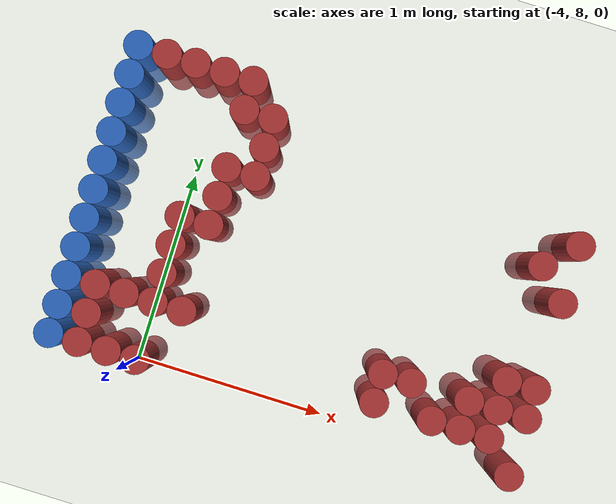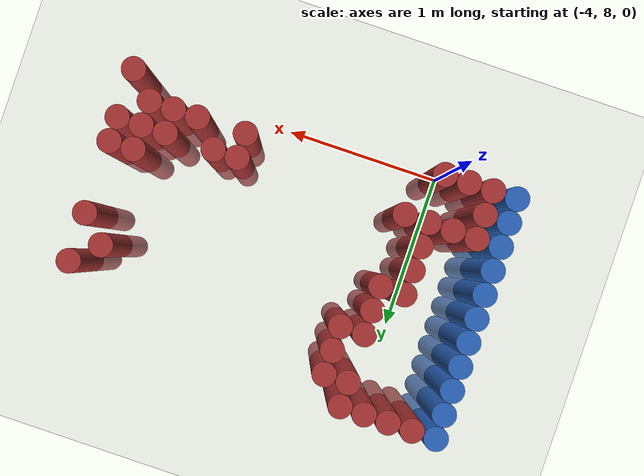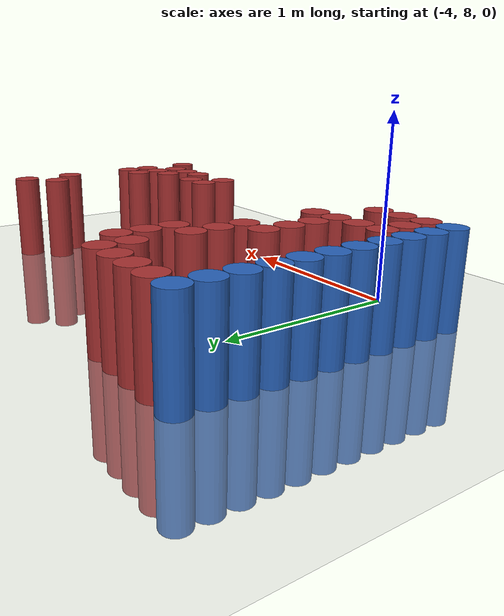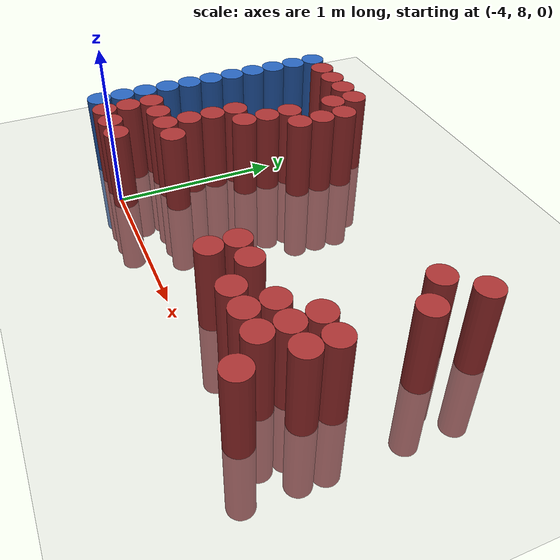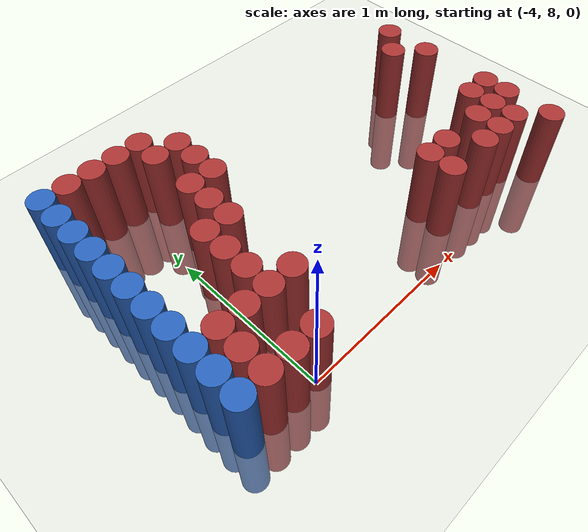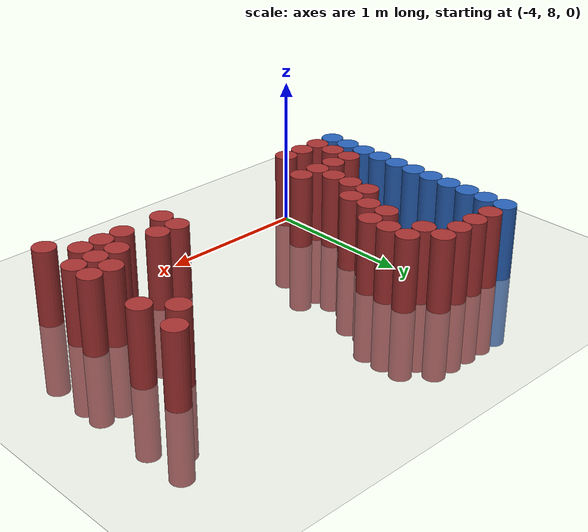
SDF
<sdf version="1.6">
 <world name="default">
  <model name="ground_plane">
   <static>1</static>
   <link name="link">
    <collision name="collision">
     <geometry><plane><normal>0 0 1</normal><size>100 100</size></plane></geometry>
     <surface><friction><ode><mu>100</mu><mu2>50</mu2></ode></friction></surface>
    </collision>
    <visual name="visual">
     <cast_shadows>0</cast_shadows>
     <geometry><plane><normal>0 0 1</normal><size>100 100</size></plane></geometry>
     <material>
      <script><uri>file://media/materials/scripts/gazebo.material</uri><name>Gazebo/Grey</name></script>
     </material>
    </visual>
   </link>
  </model>
  <model name="unit_cylinder_115">
   <static>1</static>
   <pose>-4.425000 8.025000 0.000000 0.000000 0.000000 0.000000</pose>
   <link name="link">
    <inertial>
     <mass>1</mass>
     <inertia><ixx>0.145833</ixx><ixy>0</ixy><ixz>0</ixz><iyy>0.145833</iyy><iyz>0</iyz><izz>0.125</izz></inertia>
    </inertial>
    <collision name="collision">
     <geometry><cylinder><radius>0.075000</radius><length>1</length></cylinder></geometry>
    </collision>
    <visual name="visual">
     <geometry><cylinder><radius>0.075000</radius><length>1</length></cylinder></geometry>
     <material>
      <ambient>0.152000 0.379000 0.720000 1</ambient>
      <diffuse>0.152000 0.379000 0.720000 1</diffuse>
     </material>
     <material>
      <script><name>Gazebo/Grey</name><uri>file://media/materials/scripts/gazebo.material</uri></script>
     </material>
    </visual>
   </link>
  </model>
  <model name="unit_cylinder_116">
   <static>1</static>
   <pose>-4.425000 8.175000 0.000000 0.000000 0.000000 0.000000</pose>
   <link name="link">
    <inertial>
     <mass>1</mass>
     <inertia><ixx>0.145833</ixx><ixy>0</ixy><ixz>0</ixz><iyy>0.145833</iyy><iyz>0</iyz><izz>0.125</izz></inertia>
    </inertial>
    <collision name="collision">
     <geometry><cylinder><radius>0.075000</radius><length>1</length></cylinder></geometry>
    </collision>
    <visual name="visual">
     <geometry><cylinder><radius>0.075000</radius><length>1</length></cylinder></geometry>
     <material>
      <ambient>0.152000 0.379000 0.720000 1</ambient>
      <diffuse>0.152000 0.379000 0.720000 1</diffuse>
     </material>
     <material>
      <script><name>Gazebo/Grey</name><uri>file://media/materials/scripts/gazebo.material</uri></script>
     </material>
    </visual>
   </link>
  </model>
  <model name="unit_cylinder_117">
   <static>1</static>
   <pose>-4.425000 8.325000 0.000000 0.000000 0.000000 0.000000</pose>
   <link name="link">
    <inertial>
     <mass>1</mass>
     <inertia><ixx>0.145833</ixx><ixy>0</ixy><ixz>0</ixz><iyy>0.145833</iyy><iyz>0</iyz><izz>0.125</izz></inertia>
    </inertial>
    <collision name="collision">
     <geometry><cylinder><radius>0.075000</radius><length>1</length></cylinder></geometry>
    </collision>
    <visual name="visual">
     <geometry><cylinder><radius>0.075000</radius><length>1</length></cylinder></geometry>
     <material>
      <ambient>0.152000 0.379000 0.720000 1</ambient>
      <diffuse>0.152000 0.379000 0.720000 1</diffuse>
     </material>
     <material>
      <script><name>Gazebo/Grey</name><uri>file://media/materials/scripts/gazebo.material</uri></script>
     </material>
    </visual>
   </link>
  </model>
  <model name="unit_cylinder_118">
   <static>1</static>
   <pose>-4.425000 8.475000 0.000000 0.000000 0.000000 0.000000</pose>
   <link name="link">
    <inertial>
     <mass>1</mass>
     <inertia><ixx>0.145833</ixx><ixy>0</ixy><ixz>0</ixz><iyy>0.145833</iyy><iyz>0</iyz><izz>0.125</izz></inertia>
    </inertial>
    <collision name="collision">
     <geometry><cylinder><radius>0.075000</radius><length>1</length></cylinder></geometry>
    </collision>
    <visual name="visual">
     <geometry><cylinder><radius>0.075000</radius><length>1</length></cylinder></geometry>
     <material>
      <ambient>0.152000 0.379000 0.720000 1</ambient>
      <diffuse>0.152000 0.379000 0.720000 1</diffuse>
     </material>
     <material>
      <script><name>Gazebo/Grey</name><uri>file://media/materials/scripts/gazebo.material</uri></script>
     </material>
    </visual>
   </link>
  </model>
  <model name="unit_cylinder_119">
   <static>1</static>
   <pose>-4.425000 8.625000 0.000000 0.000000 0.000000 0.000000</pose>
   <link name="link">
    <inertial>
     <mass>1</mass>
     <inertia><ixx>0.145833</ixx><ixy>0</ixy><ixz>0</ixz><iyy>0.145833</iyy><iyz>0</iyz><izz>0.125</izz></inertia>
    </inertial>
    <collision name="collision">
     <geometry><cylinder><radius>0.075000</radius><length>1</length></cylinder></geometry>
    </collision>
    <visual name="visual">
     <geometry><cylinder><radius>0.075000</radius><length>1</length></cylinder></geometry>
     <material>
      <ambient>0.152000 0.379000 0.720000 1</ambient>
      <diffuse>0.152000 0.379000 0.720000 1</diffuse>
     </material>
     <material>
      <script><name>Gazebo/Grey</name><uri>file://media/materials/scripts/gazebo.material</uri></script>
     </material>
    </visual>
   </link>
  </model>
  <model name="unit_cylinder_120">
   <static>1</static>
   <pose>-4.425000 8.775000 0.000000 0.000000 0.000000 0.000000</pose>
   <link name="link">
    <inertial>
     <mass>1</mass>
     <inertia><ixx>0.145833</ixx><ixy>0</ixy><ixz>0</ixz><iyy>0.145833</iyy><iyz>0</iyz><izz>0.125</izz></inertia>
    </inertial>
    <collision name="collision">
     <geometry><cylinder><radius>0.075000</radius><length>1</length></cylinder></geometry>
    </collision>
    <visual name="visual">
     <geometry><cylinder><radius>0.075000</radius><length>1</length></cylinder></geometry>
     <material>
      <ambient>0.152000 0.379000 0.720000 1</ambient>
      <diffuse>0.152000 0.379000 0.720000 1</diffuse>
     </material>
     <material>
      <script><name>Gazebo/Grey</name><uri>file://media/materials/scripts/gazebo.material</uri></script>
     </material>
    </visual>
   </link>
  </model>
  <model name="unit_cylinder_121">
   <static>1</static>
   <pose>-4.425000 8.925000 0.000000 0.000000 0.000000 0.000000</pose>
   <link name="link">
    <inertial>
     <mass>1</mass>
     <inertia><ixx>0.145833</ixx><ixy>0</ixy><ixz>0</ixz><iyy>0.145833</iyy><iyz>0</iyz><izz>0.125</izz></inertia>
    </inertial>
    <collision name="collision">
     <geometry><cylinder><radius>0.075000</radius><length>1</length></cylinder></geometry>
    </collision>
    <visual name="visual">
     <geometry><cylinder><radius>0.075000</radius><length>1</length></cylinder></geometry>
     <material>
      <ambient>0.152000 0.379000 0.720000 1</ambient>
      <diffuse>0.152000 0.379000 0.720000 1</diffuse>
     </material>
     <material>
      <script><name>Gazebo/Grey</name><uri>file://media/materials/scripts/gazebo.material</uri></script>
     </material>
    </visual>
   </link>
  </model>
  <model name="unit_cylinder_122">
   <static>1</static>
   <pose>-4.425000 9.075000 0.000000 0.000000 0.000000 0.000000</pose>
   <link name="link">
    <inertial>
     <mass>1</mass>
     <inertia><ixx>0.145833</ixx><ixy>0</ixy><ixz>0</ixz><iyy>0.145833</iyy><iyz>0</iyz><izz>0.125</izz></inertia>
    </inertial>
    <collision name="collision">
     <geometry><cylinder><radius>0.075000</radius><length>1</length></cylinder></geometry>
    </collision>
    <visual name="visual">
     <geometry><cylinder><radius>0.075000</radius><length>1</length></cylinder></geometry>
     <material>
      <ambient>0.152000 0.379000 0.720000 1</ambient>
      <diffuse>0.152000 0.379000 0.720000 1</diffuse>
     </material>
     <material>
      <script><name>Gazebo/Grey</name><uri>file://media/materials/scripts/gazebo.material</uri></script>
     </material>
    </visual>
   </link>
  </model>
  <model name="unit_cylinder_123">
   <static>1</static>
   <pose>-4.425000 9.225000 0.000000 0.000000 0.000000 0.000000</pose>
   <link name="link">
    <inertial>
     <mass>1</mass>
     <inertia><ixx>0.145833</ixx><ixy>0</ixy><ixz>0</ixz><iyy>0.145833</iyy><iyz>0</iyz><izz>0.125</izz></inertia>
    </inertial>
    <collision name="collision">
     <geometry><cylinder><radius>0.075000</radius><length>1</length></cylinder></geometry>
    </collision>
    <visual name="visual">
     <geometry><cylinder><radius>0.075000</radius><length>1</length></cylinder></geometry>
     <material>
      <ambient>0.152000 0.379000 0.720000 1</ambient>
      <diffuse>0.152000 0.379000 0.720000 1</diffuse>
     </material>
     <material>
      <script><name>Gazebo/Grey</name><uri>file://media/materials/scripts/gazebo.material</uri></script>
     </material>
    </visual>
   </link>
  </model>
  <model name="unit_cylinder_124">
   <static>1</static>
   <pose>-4.425000 9.375000 0.000000 0.000000 0.000000 0.000000</pose>
   <link name="link">
    <inertial>
     <mass>1</mass>
     <inertia><ixx>0.145833</ixx><ixy>0</ixy><ixz>0</ixz><iyy>0.145833</iyy><iyz>0</iyz><izz>0.125</izz></inertia>
    </inertial>
    <collision name="collision">
     <geometry><cylinder><radius>0.075000</radius><length>1</length></cylinder></geometry>
    </collision>
    <visual name="visual">
     <geometry><cylinder><radius>0.075000</radius><length>1</length></cylinder></geometry>
     <material>
      <ambient>0.152000 0.379000 0.720000 1</ambient>
      <diffuse>0.152000 0.379000 0.720000 1</diffuse>
     </material>
     <material>
      <script><name>Gazebo/Grey</name><uri>file://media/materials/scripts/gazebo.material</uri></script>
     </material>
    </visual>
   </link>
  </model>
  <model name="unit_cylinder_125">
   <static>1</static>
   <pose>-4.425000 9.525000 0.000000 0.000000 0.000000 0.000000</pose>
   <link name="link">
    <inertial>
     <mass>1</mass>
     <inertia><ixx>0.145833</ixx><ixy>0</ixy><ixz>0</ixz><iyy>0.145833</iyy><iyz>0</iyz><izz>0.125</izz></inertia>
    </inertial>
    <collision name="collision">
     <geometry><cylinder><radius>0.075000</radius><length>1</length></cylinder></geometry>
    </collision>
    <visual name="visual">
     <geometry><cylinder><radius>0.075000</radius><length>1</length></cylinder></geometry>
     <material>
      <ambient>0.152000 0.379000 0.720000 1</ambient>
      <diffuse>0.152000 0.379000 0.720000 1</diffuse>
     </material>
     <material>
      <script><name>Gazebo/Grey</name><uri>file://media/materials/scripts/gazebo.material</uri></script>
     </material>
    </visual>
   </link>
  </model>
  <model name="unit_cylinder_131">
   <static>1</static>
   <pose>-4.275000 8.025000 0.000000 0.000000 0.000000 0.000000</pose>
   <link name="link">
    <inertial>
     <mass>1</mass>
     <inertia><ixx>0.145833</ixx><ixy>0</ixy><ixz>0</ixz><iyy>0.145833</iyy><iyz>0</iyz><izz>0.125</izz></inertia>
    </inertial>
    <collision name="collision">
     <geometry><cylinder><radius>0.075000</radius><length>1</length></cylinder></geometry>
    </collision>
    <visual name="visual">
     <geometry><cylinder><radius>0.075000</radius><length>1</length></cylinder></geometry>
     <material>
      <ambient>0.648000 0.192000 0.192000 1</ambient>
      <diffuse>0.648000 0.192000 0.192000 1</diffuse>
     </material>
     <material>
      <script><name>Gazebo/Grey</name><uri>file://media/materials/scripts/gazebo.material</uri></script>
     </material>
    </visual>
   </link>
  </model>
  <model name="unit_cylinder_132">
   <static>1</static>
   <pose>-4.275000 8.175000 0.000000 0.000000 0.000000 0.000000</pose>
   <link name="link">
    <inertial>
     <mass>1</mass>
     <inertia><ixx>0.145833</ixx><ixy>0</ixy><ixz>0</ixz><iyy>0.145833</iyy><iyz>0</iyz><izz>0.125</izz></inertia>
    </inertial>
    <collision name="collision">
     <geometry><cylinder><radius>0.075000</radius><length>1</length></cylinder></geometry>
    </collision>
    <visual name="visual">
     <geometry><cylinder><radius>0.075000</radius><length>1</length></cylinder></geometry>
     <material>
      <ambient>0.648000 0.192000 0.192000 1</ambient>
      <diffuse>0.648000 0.192000 0.192000 1</diffuse>
     </material>
     <material>
      <script><name>Gazebo/Grey</name><uri>file://media/materials/scripts/gazebo.material</uri></script>
     </material>
    </visual>
   </link>
  </model>
  <model name="unit_cylinder_133">
   <static>1</static>
   <pose>-4.275000 8.325000 0.000000 0.000000 0.000000 0.000000</pose>
   <link name="link">
    <inertial>
     <mass>1</mass>
     <inertia><ixx>0.145833</ixx><ixy>0</ixy><ixz>0</ixz><iyy>0.145833</iyy><iyz>0</iyz><izz>0.125</izz></inertia>
    </inertial>
    <collision name="collision">
     <geometry><cylinder><radius>0.075000</radius><length>1</length></cylinder></geometry>
    </collision>
    <visual name="visual">
     <geometry><cylinder><radius>0.075000</radius><length>1</length></cylinder></geometry>
     <material>
      <ambient>0.648000 0.192000 0.192000 1</ambient>
      <diffuse>0.648000 0.192000 0.192000 1</diffuse>
     </material>
     <material>
      <script><name>Gazebo/Grey</name><uri>file://media/materials/scripts/gazebo.material</uri></script>
     </material>
    </visual>
   </link>
  </model>
  <model name="unit_cylinder_134">
   <static>1</static>
   <pose>-4.275000 9.525000 0.000000 0.000000 0.000000 0.000000</pose>
   <link name="link">
    <inertial>
     <mass>1</mass>
     <inertia><ixx>0.145833</ixx><ixy>0</ixy><ixz>0</ixz><iyy>0.145833</iyy><iyz>0</iyz><izz>0.125</izz></inertia>
    </inertial>
    <collision name="collision">
     <geometry><cylinder><radius>0.075000</radius><length>1</length></cylinder></geometry>
    </collision>
    <visual name="visual">
     <geometry><cylinder><radius>0.075000</radius><length>1</length></cylinder></geometry>
     <material>
      <ambient>0.648000 0.192000 0.192000 1</ambient>
      <diffuse>0.648000 0.192000 0.192000 1</diffuse>
     </material>
     <material>
      <script><name>Gazebo/Grey</name><uri>file://media/materials/scripts/gazebo.material</uri></script>
     </material>
    </visual>
   </link>
  </model>
  <model name="unit_cylinder_140">
   <static>1</static>
   <pose>-4.125000 8.025000 0.000000 0.000000 0.000000 0.000000</pose>
   <link name="link">
    <inertial>
     <mass>1</mass>
     <inertia><ixx>0.145833</ixx><ixy>0</ixy><ixz>0</ixz><iyy>0.145833</iyy><iyz>0</iyz><izz>0.125</izz></inertia>
    </inertial>
    <collision name="collision">
     <geometry><cylinder><radius>0.075000</radius><length>1</length></cylinder></geometry>
    </collision>
    <visual name="visual">
     <geometry><cylinder><radius>0.075000</radius><length>1</length></cylinder></geometry>
     <material>
      <ambient>0.648000 0.192000 0.192000 1</ambient>
      <diffuse>0.648000 0.192000 0.192000 1</diffuse>
     </material>
     <material>
      <script><name>Gazebo/Grey</name><uri>file://media/materials/scripts/gazebo.material</uri></script>
     </material>
    </visual>
   </link>
  </model>
  <model name="unit_cylinder_141">
   <static>1</static>
   <pose>-4.125000 8.325000 0.000000 0.000000 0.000000 0.000000</pose>
   <link name="link">
    <inertial>
     <mass>1</mass>
     <inertia><ixx>0.145833</ixx><ixy>0</ixy><ixz>0</ixz><iyy>0.145833</iyy><iyz>0</iyz><izz>0.125</izz></inertia>
    </inertial>
    <collision name="collision">
     <geometry><cylinder><radius>0.075000</radius><length>1</length></cylinder></geometry>
    </collision>
    <visual name="visual">
     <geometry><cylinder><radius>0.075000</radius><length>1</length></cylinder></geometry>
     <material>
      <ambient>0.648000 0.192000 0.192000 1</ambient>
      <diffuse>0.648000 0.192000 0.192000 1</diffuse>
     </material>
     <material>
      <script><name>Gazebo/Grey</name><uri>file://media/materials/scripts/gazebo.material</uri></script>
     </material>
    </visual>
   </link>
  </model>
  <model name="unit_cylinder_142">
   <static>1</static>
   <pose>-4.125000 9.525000 0.000000 0.000000 0.000000 0.000000</pose>
   <link name="link">
    <inertial>
     <mass>1</mass>
     <inertia><ixx>0.145833</ixx><ixy>0</ixy><ixz>0</ixz><iyy>0.145833</iyy><iyz>0</iyz><izz>0.125</izz></inertia>
    </inertial>
    <collision name="collision">
     <geometry><cylinder><radius>0.075000</radius><length>1</length></cylinder></geometry>
    </collision>
    <visual name="visual">
     <geometry><cylinder><radius>0.075000</radius><length>1</length></cylinder></geometry>
     <material>
      <ambient>0.648000 0.192000 0.192000 1</ambient>
      <diffuse>0.648000 0.192000 0.192000 1</diffuse>
     </material>
     <material>
      <script><name>Gazebo/Grey</name><uri>file://media/materials/scripts/gazebo.material</uri></script>
     </material>
    </visual>
   </link>
  </model>
  <model name="unit_cylinder_153">
   <static>1</static>
   <pose>-3.975000 8.025000 0.000000 0.000000 0.000000 0.000000</pose>
   <link name="link">
    <inertial>
     <mass>1</mass>
     <inertia><ixx>0.145833</ixx><ixy>0</ixy><ixz>0</ixz><iyy>0.145833</iyy><iyz>0</iyz><izz>0.125</izz></inertia>
    </inertial>
    <collision name="collision">
     <geometry><cylinder><radius>0.075000</radius><length>1</length></cylinder></geometry>
    </collision>
    <visual name="visual">
     <geometry><cylinder><radius>0.075000</radius><length>1</length></cylinder></geometry>
     <material>
      <ambient>0.648000 0.192000 0.192000 1</ambient>
      <diffuse>0.648000 0.192000 0.192000 1</diffuse>
     </material>
     <material>
      <script><name>Gazebo/Grey</name><uri>file://media/materials/scripts/gazebo.material</uri></script>
     </material>
    </visual>
   </link>
  </model>
  <model name="unit_cylinder_154">
   <static>1</static>
   <pose>-3.975000 8.325000 0.000000 0.000000 0.000000 0.000000</pose>
   <link name="link">
    <inertial>
     <mass>1</mass>
     <inertia><ixx>0.145833</ixx><ixy>0</ixy><ixz>0</ixz><iyy>0.145833</iyy><iyz>0</iyz><izz>0.125</izz></inertia>
    </inertial>
    <collision name="collision">
     <geometry><cylinder><radius>0.075000</radius><length>1</length></cylinder></geometry>
    </collision>
    <visual name="visual">
     <geometry><cylinder><radius>0.075000</radius><length>1</length></cylinder></geometry>
     <material>
      <ambient>0.648000 0.192000 0.192000 1</ambient>
      <diffuse>0.648000 0.192000 0.192000 1</diffuse>
     </material>
     <material>
      <script><name>Gazebo/Grey</name><uri>file://media/materials/scripts/gazebo.material</uri></script>
     </material>
    </visual>
   </link>
  </model>
  <model name="unit_cylinder_155">
   <static>1</static>
   <pose>-3.975000 8.475000 0.000000 0.000000 0.000000 0.000000</pose>
   <link name="link">
    <inertial>
     <mass>1</mass>
     <inertia><ixx>0.145833</ixx><ixy>0</ixy><ixz>0</ixz><iyy>0.145833</iyy><iyz>0</iyz><izz>0.125</izz></inertia>
    </inertial>
    <collision name="collision">
     <geometry><cylinder><radius>0.075000</radius><length>1</length></cylinder></geometry>
    </collision>
    <visual name="visual">
     <geometry><cylinder><radius>0.075000</radius><length>1</length></cylinder></geometry>
     <material>
      <ambient>0.648000 0.192000 0.192000 1</ambient>
      <diffuse>0.648000 0.192000 0.192000 1</diffuse>
     </material>
     <material>
      <script><name>Gazebo/Grey</name><uri>file://media/materials/scripts/gazebo.material</uri></script>
     </material>
    </visual>
   </link>
  </model>
  <model name="unit_cylinder_156">
   <static>1</static>
   <pose>-3.975000 8.625000 0.000000 0.000000 0.000000 0.000000</pose>
   <link name="link">
    <inertial>
     <mass>1</mass>
     <inertia><ixx>0.145833</ixx><ixy>0</ixy><ixz>0</ixz><iyy>0.145833</iyy><iyz>0</iyz><izz>0.125</izz></inertia>
    </inertial>
    <collision name="collision">
     <geometry><cylinder><radius>0.075000</radius><length>1</length></cylinder></geometry>
    </collision>
    <visual name="visual">
     <geometry><cylinder><radius>0.075000</radius><length>1</length></cylinder></geometry>
     <material>
      <ambient>0.648000 0.192000 0.192000 1</ambient>
      <diffuse>0.648000 0.192000 0.192000 1</diffuse>
     </material>
     <material>
      <script><name>Gazebo/Grey</name><uri>file://media/materials/scripts/gazebo.material</uri></script>
     </material>
    </visual>
   </link>
  </model>
  <model name="unit_cylinder_157">
   <static>1</static>
   <pose>-3.975000 8.775000 0.000000 0.000000 0.000000 0.000000</pose>
   <link name="link">
    <inertial>
     <mass>1</mass>
     <inertia><ixx>0.145833</ixx><ixy>0</ixy><ixz>0</ixz><iyy>0.145833</iyy><iyz>0</iyz><izz>0.125</izz></inertia>
    </inertial>
    <collision name="collision">
     <geometry><cylinder><radius>0.075000</radius><length>1</length></cylinder></geometry>
    </collision>
    <visual name="visual">
     <geometry><cylinder><radius>0.075000</radius><length>1</length></cylinder></geometry>
     <material>
      <ambient>0.648000 0.192000 0.192000 1</ambient>
      <diffuse>0.648000 0.192000 0.192000 1</diffuse>
     </material>
     <material>
      <script><name>Gazebo/Grey</name><uri>file://media/materials/scripts/gazebo.material</uri></script>
     </material>
    </visual>
   </link>
  </model>
  <model name="unit_cylinder_158">
   <static>1</static>
   <pose>-3.975000 9.525000 0.000000 0.000000 0.000000 0.000000</pose>
   <link name="link">
    <inertial>
     <mass>1</mass>
     <inertia><ixx>0.145833</ixx><ixy>0</ixy><ixz>0</ixz><iyy>0.145833</iyy><iyz>0</iyz><izz>0.125</izz></inertia>
    </inertial>
    <collision name="collision">
     <geometry><cylinder><radius>0.075000</radius><length>1</length></cylinder></geometry>
    </collision>
    <visual name="visual">
     <geometry><cylinder><radius>0.075000</radius><length>1</length></cylinder></geometry>
     <material>
      <ambient>0.648000 0.192000 0.192000 1</ambient>
      <diffuse>0.648000 0.192000 0.192000 1</diffuse>
     </material>
     <material>
      <script><name>Gazebo/Grey</name><uri>file://media/materials/scripts/gazebo.material</uri></script>
     </material>
    </visual>
   </link>
  </model>
  <model name="unit_cylinder_165">
   <static>1</static>
   <pose>-3.825000 8.325000 0.000000 0.000000 0.000000 0.000000</pose>
   <link name="link">
    <inertial>
     <mass>1</mass>
     <inertia><ixx>0.145833</ixx><ixy>0</ixy><ixz>0</ixz><iyy>0.145833</iyy><iyz>0</iyz><izz>0.125</izz></inertia>
    </inertial>
    <collision name="collision">
     <geometry><cylinder><radius>0.075000</radius><length>1</length></cylinder></geometry>
    </collision>
    <visual name="visual">
     <geometry><cylinder><radius>0.075000</radius><length>1</length></cylinder></geometry>
     <material>
      <ambient>0.648000 0.192000 0.192000 1</ambient>
      <diffuse>0.648000 0.192000 0.192000 1</diffuse>
     </material>
     <material>
      <script><name>Gazebo/Grey</name><uri>file://media/materials/scripts/gazebo.material</uri></script>
     </material>
    </visual>
   </link>
  </model>
  <model name="unit_cylinder_166">
   <static>1</static>
   <pose>-3.825000 8.775000 0.000000 0.000000 0.000000 0.000000</pose>
   <link name="link">
    <inertial>
     <mass>1</mass>
     <inertia><ixx>0.145833</ixx><ixy>0</ixy><ixz>0</ixz><iyy>0.145833</iyy><iyz>0</iyz><izz>0.125</izz></inertia>
    </inertial>
    <collision name="collision">
     <geometry><cylinder><radius>0.075000</radius><length>1</length></cylinder></geometry>
    </collision>
    <visual name="visual">
     <geometry><cylinder><radius>0.075000</radius><length>1</length></cylinder></geometry>
     <material>
      <ambient>0.648000 0.192000 0.192000 1</ambient>
      <diffuse>0.648000 0.192000 0.192000 1</diffuse>
     </material>
     <material>
      <script><name>Gazebo/Grey</name><uri>file://media/materials/scripts/gazebo.material</uri></script>
     </material>
    </visual>
   </link>
  </model>
  <model name="unit_cylinder_167">
   <static>1</static>
   <pose>-3.825000 8.925000 0.000000 0.000000 0.000000 0.000000</pose>
   <link name="link">
    <inertial>
     <mass>1</mass>
     <inertia><ixx>0.145833</ixx><ixy>0</ixy><ixz>0</ixz><iyy>0.145833</iyy><iyz>0</iyz><izz>0.125</izz></inertia>
    </inertial>
    <collision name="collision">
     <geometry><cylinder><radius>0.075000</radius><length>1</length></cylinder></geometry>
    </collision>
    <visual name="visual">
     <geometry><cylinder><radius>0.075000</radius><length>1</length></cylinder></geometry>
     <material>
      <ambient>0.648000 0.192000 0.192000 1</ambient>
      <diffuse>0.648000 0.192000 0.192000 1</diffuse>
     </material>
     <material>
      <script><name>Gazebo/Grey</name><uri>file://media/materials/scripts/gazebo.material</uri></script>
     </material>
    </visual>
   </link>
  </model>
  <model name="unit_cylinder_168">
   <static>1</static>
   <pose>-3.825000 9.075000 0.000000 0.000000 0.000000 0.000000</pose>
   <link name="link">
    <inertial>
     <mass>1</mass>
     <inertia><ixx>0.145833</ixx><ixy>0</ixy><ixz>0</ixz><iyy>0.145833</iyy><iyz>0</iyz><izz>0.125</izz></inertia>
    </inertial>
    <collision name="collision">
     <geometry><cylinder><radius>0.075000</radius><length>1</length></cylinder></geometry>
    </collision>
    <visual name="visual">
     <geometry><cylinder><radius>0.075000</radius><length>1</length></cylinder></geometry>
     <material>
      <ambient>0.648000 0.192000 0.192000 1</ambient>
      <diffuse>0.648000 0.192000 0.192000 1</diffuse>
     </material>
     <material>
      <script><name>Gazebo/Grey</name><uri>file://media/materials/scripts/gazebo.material</uri></script>
     </material>
    </visual>
   </link>
  </model>
  <model name="unit_cylinder_169">
   <static>1</static>
   <pose>-3.825000 9.375000 0.000000 0.000000 0.000000 0.000000</pose>
   <link name="link">
    <inertial>
     <mass>1</mass>
     <inertia><ixx>0.145833</ixx><ixy>0</ixy><ixz>0</ixz><iyy>0.145833</iyy><iyz>0</iyz><izz>0.125</izz></inertia>
    </inertial>
    <collision name="collision">
     <geometry><cylinder><radius>0.075000</radius><length>1</length></cylinder></geometry>
    </collision>
    <visual name="visual">
     <geometry><cylinder><radius>0.075000</radius><length>1</length></cylinder></geometry>
     <material>
      <ambient>0.648000 0.192000 0.192000 1</ambient>
      <diffuse>0.648000 0.192000 0.192000 1</diffuse>
     </material>
     <material>
      <script><name>Gazebo/Grey</name><uri>file://media/materials/scripts/gazebo.material</uri></script>
     </material>
    </visual>
   </link>
  </model>
  <model name="unit_cylinder_170">
   <static>1</static>
   <pose>-3.825000 9.525000 0.000000 0.000000 0.000000 0.000000</pose>
   <link name="link">
    <inertial>
     <mass>1</mass>
     <inertia><ixx>0.145833</ixx><ixy>0</ixy><ixz>0</ixz><iyy>0.145833</iyy><iyz>0</iyz><izz>0.125</izz></inertia>
    </inertial>
    <collision name="collision">
     <geometry><cylinder><radius>0.075000</radius><length>1</length></cylinder></geometry>
    </collision>
    <visual name="visual">
     <geometry><cylinder><radius>0.075000</radius><length>1</length></cylinder></geometry>
     <material>
      <ambient>0.648000 0.192000 0.192000 1</ambient>
      <diffuse>0.648000 0.192000 0.192000 1</diffuse>
     </material>
     <material>
      <script><name>Gazebo/Grey</name><uri>file://media/materials/scripts/gazebo.material</uri></script>
     </material>
    </visual>
   </link>
  </model>
  <model name="unit_cylinder_175">
   <static>1</static>
   <pose>-3.675000 9.075000 0.000000 0.000000 0.000000 0.000000</pose>
   <link name="link">
    <inertial>
     <mass>1</mass>
     <inertia><ixx>0.145833</ixx><ixy>0</ixy><ixz>0</ixz><iyy>0.145833</iyy><iyz>0</iyz><izz>0.125</izz></inertia>
    </inertial>
    <collision name="collision">
     <geometry><cylinder><radius>0.075000</radius><length>1</length></cylinder></geometry>
    </collision>
    <visual name="visual">
     <geometry><cylinder><radius>0.075000</radius><length>1</length></cylinder></geometry>
     <material>
      <ambient>0.648000 0.192000 0.192000 1</ambient>
      <diffuse>0.648000 0.192000 0.192000 1</diffuse>
     </material>
     <material>
      <script><name>Gazebo/Grey</name><uri>file://media/materials/scripts/gazebo.material</uri></script>
     </material>
    </visual>
   </link>
  </model>
  <model name="unit_cylinder_176">
   <static>1</static>
   <pose>-3.675000 9.225000 0.000000 0.000000 0.000000 0.000000</pose>
   <link name="link">
    <inertial>
     <mass>1</mass>
     <inertia><ixx>0.145833</ixx><ixy>0</ixy><ixz>0</ixz><iyy>0.145833</iyy><iyz>0</iyz><izz>0.125</izz></inertia>
    </inertial>
    <collision name="collision">
     <geometry><cylinder><radius>0.075000</radius><length>1</length></cylinder></geometry>
    </collision>
    <visual name="visual">
     <geometry><cylinder><radius>0.075000</radius><length>1</length></cylinder></geometry>
     <material>
      <ambient>0.648000 0.192000 0.192000 1</ambient>
      <diffuse>0.648000 0.192000 0.192000 1</diffuse>
     </material>
     <material>
      <script><name>Gazebo/Grey</name><uri>file://media/materials/scripts/gazebo.material</uri></script>
     </material>
    </visual>
   </link>
  </model>
  <model name="unit_cylinder_177">
   <static>1</static>
   <pose>-3.675000 9.375000 0.000000 0.000000 0.000000 0.000000</pose>
   <link name="link">
    <inertial>
     <mass>1</mass>
     <inertia><ixx>0.145833</ixx><ixy>0</ixy><ixz>0</ixz><iyy>0.145833</iyy><iyz>0</iyz><izz>0.125</izz></inertia>
    </inertial>
    <collision name="collision">
     <geometry><cylinder><radius>0.075000</radius><length>1</length></cylinder></geometry>
    </collision>
    <visual name="visual">
     <geometry><cylinder><radius>0.075000</radius><length>1</length></cylinder></geometry>
     <material>
      <ambient>0.648000 0.192000 0.192000 1</ambient>
      <diffuse>0.648000 0.192000 0.192000 1</diffuse>
     </material>
     <material>
      <script><name>Gazebo/Grey</name><uri>file://media/materials/scripts/gazebo.material</uri></script>
     </material>
    </visual>
   </link>
  </model>
  <model name="unit_cylinder_186">
   <static>1</static>
   <pose>-2.775000 8.175000 0.000000 0.000000 0.000000 0.000000</pose>
   <link name="link">
    <inertial>
     <mass>1</mass>
     <inertia><ixx>0.145833</ixx><ixy>0</ixy><ixz>0</ixz><iyy>0.145833</iyy><iyz>0</iyz><izz>0.125</izz></inertia>
    </inertial>
    <collision name="collision">
     <geometry><cylinder><radius>0.075000</radius><length>1</length></cylinder></geometry>
    </collision>
    <visual name="visual">
     <geometry><cylinder><radius>0.075000</radius><length>1</length></cylinder></geometry>
     <material>
      <ambient>0.648000 0.192000 0.192000 1</ambient>
      <diffuse>0.648000 0.192000 0.192000 1</diffuse>
     </material>
     <material>
      <script><name>Gazebo/Grey</name><uri>file://media/materials/scripts/gazebo.material</uri></script>
     </material>
    </visual>
   </link>
  </model>
  <model name="unit_cylinder_187">
   <static>1</static>
   <pose>-2.775000 8.325000 0.000000 0.000000 0.000000 0.000000</pose>
   <link name="link">
    <inertial>
     <mass>1</mass>
     <inertia><ixx>0.145833</ixx><ixy>0</ixy><ixz>0</ixz><iyy>0.145833</iyy><iyz>0</iyz><izz>0.125</izz></inertia>
    </inertial>
    <collision name="collision">
     <geometry><cylinder><radius>0.075000</radius><length>1</length></cylinder></geometry>
    </collision>
    <visual name="visual">
     <geometry><cylinder><radius>0.075000</radius><length>1</length></cylinder></geometry>
     <material>
      <ambient>0.648000 0.192000 0.192000 1</ambient>
      <diffuse>0.648000 0.192000 0.192000 1</diffuse>
     </material>
     <material>
      <script><name>Gazebo/Grey</name><uri>file://media/materials/scripts/gazebo.material</uri></script>
     </material>
    </visual>
   </link>
  </model>
  <model name="unit_cylinder_188">
   <static>1</static>
   <pose>-2.625000 8.325000 0.000000 0.000000 0.000000 0.000000</pose>
   <link name="link">
    <inertial>
     <mass>1</mass>
     <inertia><ixx>0.145833</ixx><ixy>0</ixy><ixz>0</ixz><iyy>0.145833</iyy><iyz>0</iyz><izz>0.125</izz></inertia>
    </inertial>
    <collision name="collision">
     <geometry><cylinder><radius>0.075000</radius><length>1</length></cylinder></geometry>
    </collision>
    <visual name="visual">
     <geometry><cylinder><radius>0.075000</radius><length>1</length></cylinder></geometry>
     <material>
      <ambient>0.648000 0.192000 0.192000 1</ambient>
      <diffuse>0.648000 0.192000 0.192000 1</diffuse>
     </material>
     <material>
      <script><name>Gazebo/Grey</name><uri>file://media/materials/scripts/gazebo.material</uri></script>
     </material>
    </visual>
   </link>
  </model>
  <model name="unit_cylinder_189">
   <static>1</static>
   <pose>-2.475000 8.175000 0.000000 0.000000 0.000000 0.000000</pose>
   <link name="link">
    <inertial>
     <mass>1</mass>
     <inertia><ixx>0.145833</ixx><ixy>0</ixy><ixz>0</ixz><iyy>0.145833</iyy><iyz>0</iyz><izz>0.125</izz></inertia>
    </inertial>
    <collision name="collision">
     <geometry><cylinder><radius>0.075000</radius><length>1</length></cylinder></geometry>
    </collision>
    <visual name="visual">
     <geometry><cylinder><radius>0.075000</radius><length>1</length></cylinder></geometry>
     <material>
      <ambient>0.648000 0.192000 0.192000 1</ambient>
      <diffuse>0.648000 0.192000 0.192000 1</diffuse>
     </material>
     <material>
      <script><name>Gazebo/Grey</name><uri>file://media/materials/scripts/gazebo.material</uri></script>
     </material>
    </visual>
   </link>
  </model>
  <model name="unit_cylinder_193">
   <static>1</static>
   <pose>-2.325000 8.175000 0.000000 0.000000 0.000000 0.000000</pose>
   <link name="link">
    <inertial>
     <mass>1</mass>
     <inertia><ixx>0.145833</ixx><ixy>0</ixy><ixz>0</ixz><iyy>0.145833</iyy><iyz>0</iyz><izz>0.125</izz></inertia>
    </inertial>
    <collision name="collision">
     <geometry><cylinder><radius>0.075000</radius><length>1</length></cylinder></geometry>
    </collision>
    <visual name="visual">
     <geometry><cylinder><radius>0.075000</radius><length>1</length></cylinder></geometry>
     <material>
      <ambient>0.648000 0.192000 0.192000 1</ambient>
      <diffuse>0.648000 0.192000 0.192000 1</diffuse>
     </material>
     <material>
      <script><name>Gazebo/Grey</name><uri>file://media/materials/scripts/gazebo.material</uri></script>
     </material>
    </visual>
   </link>
  </model>
  <model name="unit_cylinder_194">
   <static>1</static>
   <pose>-2.325000 8.325000 0.000000 0.000000 0.000000 0.000000</pose>
   <link name="link">
    <inertial>
     <mass>1</mass>
     <inertia><ixx>0.145833</ixx><ixy>0</ixy><ixz>0</ixz><iyy>0.145833</iyy><iyz>0</iyz><izz>0.125</izz></inertia>
    </inertial>
    <collision name="collision">
     <geometry><cylinder><radius>0.075000</radius><length>1</length></cylinder></geometry>
    </collision>
    <visual name="visual">
     <geometry><cylinder><radius>0.075000</radius><length>1</length></cylinder></geometry>
     <material>
      <ambient>0.648000 0.192000 0.192000 1</ambient>
      <diffuse>0.648000 0.192000 0.192000 1</diffuse>
     </material>
     <material>
      <script><name>Gazebo/Grey</name><uri>file://media/materials/scripts/gazebo.material</uri></script>
     </material>
    </visual>
   </link>
  </model>
  <model name="unit_cylinder_200">
   <static>1</static>
   <pose>-2.175000 8.175000 0.000000 0.000000 0.000000 0.000000</pose>
   <link name="link">
    <inertial>
     <mass>1</mass>
     <inertia><ixx>0.145833</ixx><ixy>0</ixy><ixz>0</ixz><iyy>0.145833</iyy><iyz>0</iyz><izz>0.125</izz></inertia>
    </inertial>
    <collision name="collision">
     <geometry><cylinder><radius>0.075000</radius><length>1</length></cylinder></geometry>
    </collision>
    <visual name="visual">
     <geometry><cylinder><radius>0.075000</radius><length>1</length></cylinder></geometry>
     <material>
      <ambient>0.648000 0.192000 0.192000 1</ambient>
      <diffuse>0.648000 0.192000 0.192000 1</diffuse>
     </material>
     <material>
      <script><name>Gazebo/Grey</name><uri>file://media/materials/scripts/gazebo.material</uri></script>
     </material>
    </visual>
   </link>
  </model>
  <model name="unit_cylinder_201">
   <static>1</static>
   <pose>-2.175000 8.325000 0.000000 0.000000 0.000000 0.000000</pose>
   <link name="link">
    <inertial>
     <mass>1</mass>
     <inertia><ixx>0.145833</ixx><ixy>0</ixy><ixz>0</ixz><iyy>0.145833</iyy><iyz>0</iyz><izz>0.125</izz></inertia>
    </inertial>
    <collision name="collision">
     <geometry><cylinder><radius>0.075000</radius><length>1</length></cylinder></geometry>
    </collision>
    <visual name="visual">
     <geometry><cylinder><radius>0.075000</radius><length>1</length></cylinder></geometry>
     <material>
      <ambient>0.648000 0.192000 0.192000 1</ambient>
      <diffuse>0.648000 0.192000 0.192000 1</diffuse>
     </material>
     <material>
      <script><name>Gazebo/Grey</name><uri>file://media/materials/scripts/gazebo.material</uri></script>
     </material>
    </visual>
   </link>
  </model>
  <model name="unit_cylinder_202">
   <static>1</static>
   <pose>-2.175000 8.475000 0.000000 0.000000 0.000000 0.000000</pose>
   <link name="link">
    <inertial>
     <mass>1</mass>
     <inertia><ixx>0.145833</ixx><ixy>0</ixy><ixz>0</ixz><iyy>0.145833</iyy><iyz>0</iyz><izz>0.125</izz></inertia>
    </inertial>
    <collision name="collision">
     <geometry><cylinder><radius>0.075000</radius><length>1</length></cylinder></geometry>
    </collision>
    <visual name="visual">
     <geometry><cylinder><radius>0.075000</radius><length>1</length></cylinder></geometry>
     <material>
      <ambient>0.648000 0.192000 0.192000 1</ambient>
      <diffuse>0.648000 0.192000 0.192000 1</diffuse>
     </material>
     <material>
      <script><name>Gazebo/Grey</name><uri>file://media/materials/scripts/gazebo.material</uri></script>
     </material>
    </visual>
   </link>
  </model>
  <model name="unit_cylinder_203">
   <static>1</static>
   <pose>-2.175000 9.075000 0.000000 0.000000 0.000000 0.000000</pose>
   <link name="link">
    <inertial>
     <mass>1</mass>
     <inertia><ixx>0.145833</ixx><ixy>0</ixy><ixz>0</ixz><iyy>0.145833</iyy><iyz>0</iyz><izz>0.125</izz></inertia>
    </inertial>
    <collision name="collision">
     <geometry><cylinder><radius>0.075000</radius><length>1</length></cylinder></geometry>
    </collision>
    <visual name="visual">
     <geometry><cylinder><radius>0.075000</radius><length>1</length></cylinder></geometry>
     <material>
      <ambient>0.648000 0.192000 0.192000 1</ambient>
      <diffuse>0.648000 0.192000 0.192000 1</diffuse>
     </material>
     <material>
      <script><name>Gazebo/Grey</name><uri>file://media/materials/scripts/gazebo.material</uri></script>
     </material>
    </visual>
   </link>
  </model>
  <model name="unit_cylinder_208">
   <static>1</static>
   <pose>-2.025000 8.025000 0.000000 0.000000 0.000000 0.000000</pose>
   <link name="link">
    <inertial>
     <mass>1</mass>
     <inertia><ixx>0.145833</ixx><ixy>0</ixy><ixz>0</ixz><iyy>0.145833</iyy><iyz>0</iyz><izz>0.125</izz></inertia>
    </inertial>
    <collision name="collision">
     <geometry><cylinder><radius>0.075000</radius><length>1</length></cylinder></geometry>
    </collision>
    <visual name="visual">
     <geometry><cylinder><radius>0.075000</radius><length>1</length></cylinder></geometry>
     <material>
      <ambient>0.648000 0.192000 0.192000 1</ambient>
      <diffuse>0.648000 0.192000 0.192000 1</diffuse>
     </material>
     <material>
      <script><name>Gazebo/Grey</name><uri>file://media/materials/scripts/gazebo.material</uri></script>
     </material>
    </visual>
   </link>
  </model>
  <model name="unit_cylinder_209">
   <static>1</static>
   <pose>-2.025000 8.325000 0.000000 0.000000 0.000000 0.000000</pose>
   <link name="link">
    <inertial>
     <mass>1</mass>
     <inertia><ixx>0.145833</ixx><ixy>0</ixy><ixz>0</ixz><iyy>0.145833</iyy><iyz>0</iyz><izz>0.125</izz></inertia>
    </inertial>
    <collision name="collision">
     <geometry><cylinder><radius>0.075000</radius><length>1</length></cylinder></geometry>
    </collision>
    <visual name="visual">
     <geometry><cylinder><radius>0.075000</radius><length>1</length></cylinder></geometry>
     <material>
      <ambient>0.648000 0.192000 0.192000 1</ambient>
      <diffuse>0.648000 0.192000 0.192000 1</diffuse>
     </material>
     <material>
      <script><name>Gazebo/Grey</name><uri>file://media/materials/scripts/gazebo.material</uri></script>
     </material>
    </visual>
   </link>
  </model>
  <model name="unit_cylinder_210">
   <static>1</static>
   <pose>-2.025000 8.475000 0.000000 0.000000 0.000000 0.000000</pose>
   <link name="link">
    <inertial>
     <mass>1</mass>
     <inertia><ixx>0.145833</ixx><ixy>0</ixy><ixz>0</ixz><iyy>0.145833</iyy><iyz>0</iyz><izz>0.125</izz></inertia>
    </inertial>
    <collision name="collision">
     <geometry><cylinder><radius>0.075000</radius><length>1</length></cylinder></geometry>
    </collision>
    <visual name="visual">
     <geometry><cylinder><radius>0.075000</radius><length>1</length></cylinder></geometry>
     <material>
      <ambient>0.648000 0.192000 0.192000 1</ambient>
      <diffuse>0.648000 0.192000 0.192000 1</diffuse>
     </material>
     <material>
      <script><name>Gazebo/Grey</name><uri>file://media/materials/scripts/gazebo.material</uri></script>
     </material>
    </visual>
   </link>
  </model>
  <model name="unit_cylinder_211">
   <static>1</static>
   <pose>-2.025000 8.925000 0.000000 0.000000 0.000000 0.000000</pose>
   <link name="link">
    <inertial>
     <mass>1</mass>
     <inertia><ixx>0.145833</ixx><ixy>0</ixy><ixz>0</ixz><iyy>0.145833</iyy><iyz>0</iyz><izz>0.125</izz></inertia>
    </inertial>
    <collision name="collision">
     <geometry><cylinder><radius>0.075000</radius><length>1</length></cylinder></geometry>
    </collision>
    <visual name="visual">
     <geometry><cylinder><radius>0.075000</radius><length>1</length></cylinder></geometry>
     <material>
      <ambient>0.648000 0.192000 0.192000 1</ambient>
      <diffuse>0.648000 0.192000 0.192000 1</diffuse>
     </material>
     <material>
      <script><name>Gazebo/Grey</name><uri>file://media/materials/scripts/gazebo.material</uri></script>
     </material>
    </visual>
   </link>
  </model>
  <model name="unit_cylinder_212">
   <static>1</static>
   <pose>-2.025000 9.225000 0.000000 0.000000 0.000000 0.000000</pose>
   <link name="link">
    <inertial>
     <mass>1</mass>
     <inertia><ixx>0.145833</ixx><ixy>0</ixy><ixz>0</ixz><iyy>0.145833</iyy><iyz>0</iyz><izz>0.125</izz></inertia>
    </inertial>
    <collision name="collision">
     <geometry><cylinder><radius>0.075000</radius><length>1</length></cylinder></geometry>
    </collision>
    <visual name="visual">
     <geometry><cylinder><radius>0.075000</radius><length>1</length></cylinder></geometry>
     <material>
      <ambient>0.648000 0.192000 0.192000 1</ambient>
      <diffuse>0.648000 0.192000 0.192000 1</diffuse>
     </material>
     <material>
      <script><name>Gazebo/Grey</name><uri>file://media/materials/scripts/gazebo.material</uri></script>
     </material>
    </visual>
   </link>
  </model>
 </world>
</sdf>
